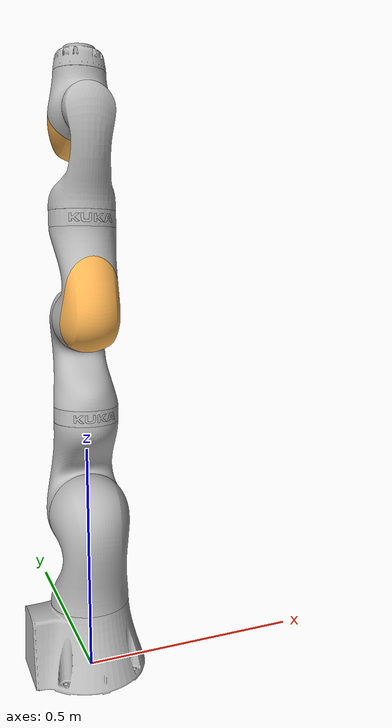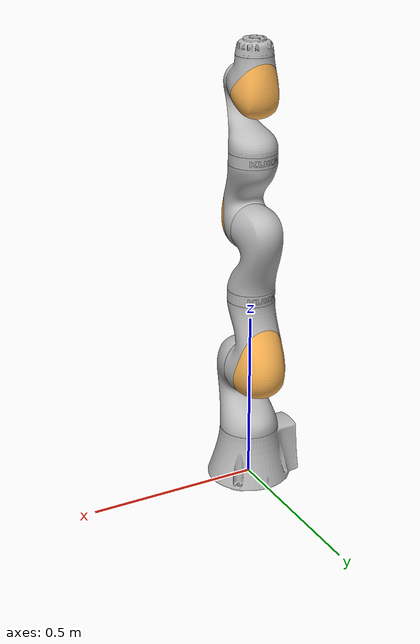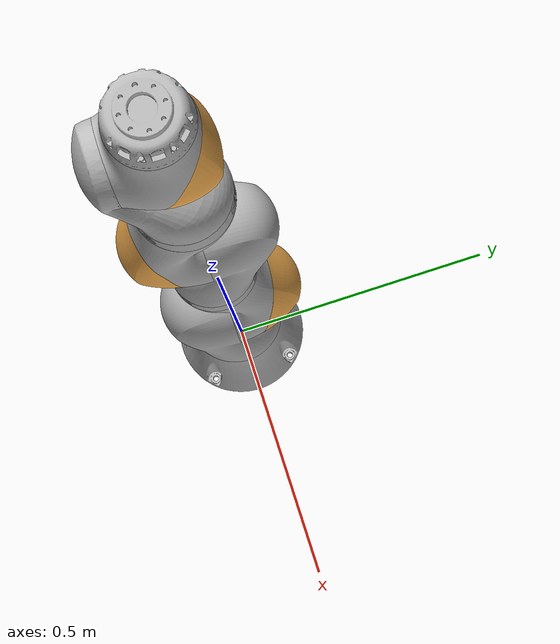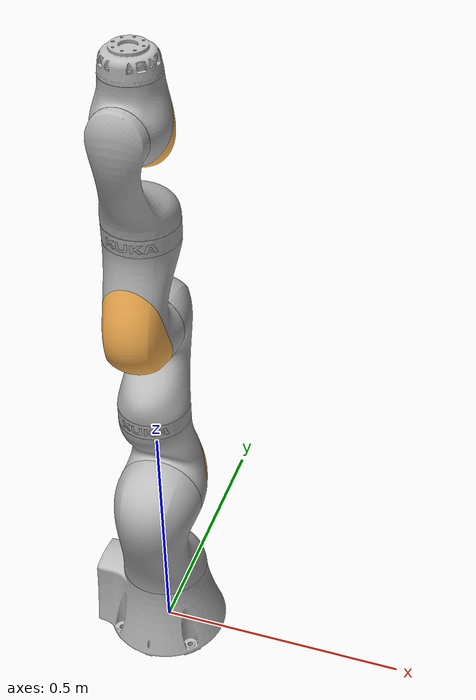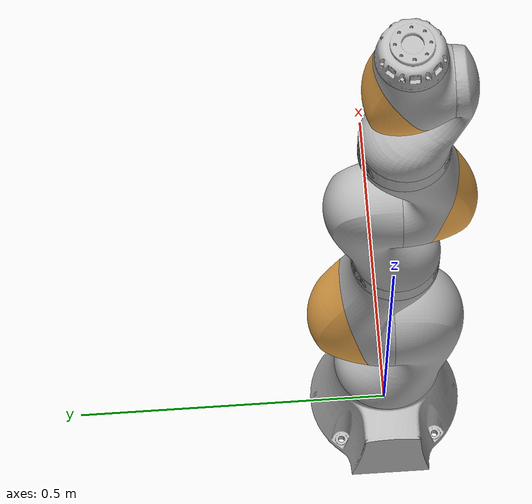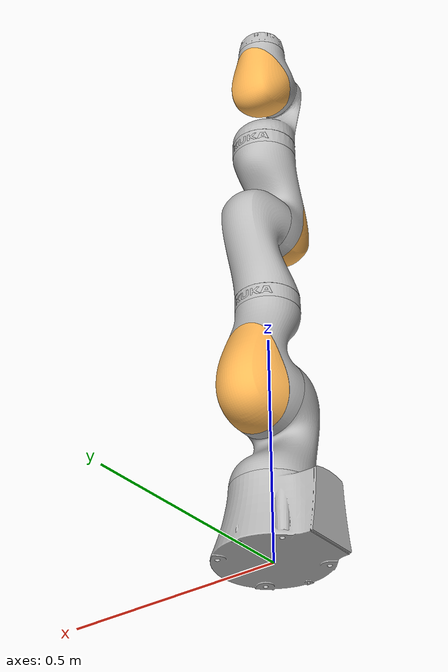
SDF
<sdf version='1.11'>
  <model name='converted_robot'>
    <joint name='world2base_fixed' type='fixed'>
      <pose relative_to='__model__'>0 0 0 0 0 0</pose>
      <parent>world</parent>
      <child>base</child>
    </joint>
    <link name='base'>
      <pose relative_to='world2base_fixed'>0 0 0 0 0 0</pose>

      <collision name='base_collision_1'>
        <pose>0 0 0.03 0 0 0</pose>
          <geometry>
            <sphere>
              <radius>0.12</radius>
            </sphere>
          </geometry>
      </collision>

      <collision name='base_collision_2'>
        <pose>-0.08 0 0.103 0 0 0</pose>
          <geometry>
            <sphere>
              <radius>0.08</radius>
            </sphere>
          </geometry>
      </collision>

      <collision name='base_collision_3'>
        <pose>-0.08 0 0.04 0 0 0</pose>
          <geometry>
            <sphere>
              <radius>0.08</radius>
            </sphere>
          </geometry>
      </collision>

      <collision name='base_collision_4'>
        <pose>0 0 0.14 0 0 0</pose>
          <geometry>
             <sphere>
              <radius>0.1</radius>
            </sphere>
          </geometry>
      </collision>

      <inertial>
        <pose>-0.10000000000000001 0 0.070000000000000007 0 0 0</pose>
        <mass>5</mass>
        <inertia>
          <ixx>0.050000000000000003</ixx>
          <ixy>0</ixy>
          <ixz>0</ixz>
          <iyy>0.059999999999999998</iyy>
          <iyz>0</iyz>
          <izz>0.029999999999999999</izz>
        </inertia>
      </inertial>
      <visual name='base_fixed_joint_lump__link_0_visual'>
        <pose>-0.01261167122700449 -3.2540969856734131e-07 0.07039070638127487 -3.1406330260149349 -1.4930811981613767 -0.00088985524124485368</pose>
        <geometry>
          <mesh>
            <scale>1 1 1</scale>
            <uri>model://../vendor/mujoco_exported/iiwa14/mesh/converted_link_0_666666ff.obj</uri>
          </mesh>
        </geometry>
      </visual>
    </link>
    <joint name='joint1' type='revolute'>
      <pose relative_to='base'>0 0 0.1575 0 0 0</pose>
      <parent>base</parent>
      <child>joint1_jointbody</child>
      <axis>
        <xyz>0 0 1</xyz>
        <limit>
          <lower>-2.96706</lower>
          <upper>2.96706</upper>
          <effort>100</effort>
          <velocity>100</velocity>
        </limit>
        <dynamics>
          <spring_reference>0</spring_reference>
          <spring_stiffness>0</spring_stiffness>
        </dynamics>
      </axis>
    </joint>
    <link name='joint1_jointbody'>

      <collision name='joint1_collision_1'>
        <pose>0 0 -0.0005 0 0 0</pose>
          <geometry>
             <sphere>
              <radius>0.08</radius>
            </sphere>
          </geometry>
      </collision>

      <collision name='joint1_collision_2'>
        <pose>0.01 -0.025 0.0425 0 0 0</pose>
        <geometry>
          <sphere>
            <radius>0.075</radius>
          </sphere>
        </geometry>
      </collision>

      <collision name='joint1_collision_3'>
        <pose>-0.01 -0.025 0.0425 0 0 0</pose>
        <geometry>
          <sphere>
            <radius>0.075</radius>
          </sphere>
        </geometry>
      </collision>

      <collision name='joint1_collision_4'>
        <pose>0.01 -0.045 0.1025 0 0 0</pose>
        <geometry>
          <sphere>
            <radius>0.07</radius>
          </sphere>
        </geometry>
      </collision>

      <collision name='joint1_collision_5'>
        <pose>-0.01 -0.045 0.1025 0 0 0</pose>
        <geometry>
          <sphere>
            <radius>0.07</radius>
          </sphere>
        </geometry>
      </collision>

      <pose relative_to='joint1'>0 0 0 0 0 0</pose>
      <inertial>
        <pose>0 -0.02999479257073424 0.119979170282937 0 0 0</pose>
        <mass>5.7610000000000001</mass>
        <inertia>
          <ixx>0.03331529834421109</ixx>
          <ixy>0</ixy>
          <ixz>0</ixz>
          <iyy>0.033014398500433959</iyy>
          <iyz>3.599375108489456e-06</iyz>
          <izz>0.012300900843777119</izz>
        </inertia>
      </inertial>
      <visual name='joint1_jointbody_fixed_joint_lump__link_1_visual'>
        <pose>-1.9467006956065569e-06 -0.03351071875139483 0.12307399450484061 -5.6995778251811152e-05 -0.21504380001445417 1.5709677059154581</pose>
        <geometry>
          <mesh>
            <scale>1 1 1</scale>
            <uri>model://../vendor/mujoco_exported/iiwa14/mesh/converted_link_1_666666ff.obj</uri>
          </mesh>
        </geometry>
      </visual>
    </link>
    <joint name='joint2' type='revolute'>
      <pose relative_to='joint1_jointbody'>0 0 0.20250000000000001 1.5707963267948959 3.7109275873535113e-33 3.1415926535897931</pose>
      <parent>joint1_jointbody</parent>
      <child>joint2_jointbody</child>
      <axis>
        <xyz>0 0 1</xyz>
        <limit>
          <lower>-2.0943999999999998</lower>
          <upper>2.0943999999999998</upper>
          <effort>100</effort>
          <velocity>100</velocity>
        </limit>
        <dynamics>
          <spring_reference>0</spring_reference>
          <spring_stiffness>0</spring_stiffness>
        </dynamics>
      </axis>
    </joint>
    <link name='joint2_jointbody'>

      <collision name='joint2_collision_1'>
        <pose>0 0 -0.01 0 0 0</pose>
        <geometry>
          <sphere>
            <radius>0.095</radius>
          </sphere>
        </geometry>
      </collision>

      <collision name='joint2_collision_2'>
        <pose>0 0 0.045 0 0 0</pose>
        <geometry>
          <sphere>
            <radius>0.09</radius>
          </sphere>
        </geometry>
      </collision>

      <collision name='joint2_collision_3'>
        <pose>-0.01 0.04 0.054 0 0 0</pose>
        <geometry>
          <sphere>
            <radius>0.07</radius>
          </sphere>
        </geometry>
      </collision>

      <collision name='joint2_collision_4'>
        <pose>-0.01 0.09 0.04 0 0 0</pose>
        <geometry>
          <sphere>
            <radius>0.065</radius>
          </sphere>
        </geometry>
      </collision>

      <collision name='joint2_collision_5'>
        <pose>-0.01 0.13 0.02 0 0 0</pose>
        <geometry>
          <sphere>
            <radius>0.065</radius>
          </sphere>
        </geometry>
      </collision>

      <collision name='joint2_collision_6'>
        <pose>0.01 0.04 0.054 0 0 0</pose>
        <geometry>
          <sphere>
            <radius>0.07</radius>
          </sphere>
        </geometry>
      </collision>

      <collision name='joint2_collision_7'>
        <pose>0.01 0.09 0.04 0 0 0</pose>
        <geometry>
          <sphere>
            <radius>0.065</radius>
          </sphere>
        </geometry>
      </collision>

      <collision name='joint2_collision_8'>
        <pose>0.01 0.13 0.02 0 0 0</pose>
        <geometry>
          <sphere>
            <radius>0.065</radius>
          </sphere>
        </geometry>
      </collision>

      <collision name='joint2_collision_9'>
        <pose>0 0.18 0 0 0 0</pose>
        <geometry>
          <sphere>
            <radius>0.075</radius>
          </sphere>
        </geometry>
      </collision>

      <pose relative_to='joint2'>0 0 0 0 0 0</pose>
      <inertial>
        <pose>0.0002999527633443552 0.058990710124389861 0.041993386868209727 0 0 0</pose>
        <mass>6.351</mass>
        <inertia>
          <ixx>0.030505245174145799</ixx>
          <ixy>-1.769721303966535e-08</ixy>
          <ixz>-1.259801606044824e-08</ixz>
          <iyy>0.011001764812234289</iyy>
          <iyz>-2.477609825228337e-06</iyz>
          <izz>0.030403481541883159</izz>
        </inertia>
      </inertial>
      <visual name='joint2_jointbody_fixed_joint_lump__link_2_orange_visual'>
        <pose>5.8332434960880928e-06 -0.0013649111339534309 0.08664810682832555 -3.1413084297767169 -1.3661334244729548 -1.5709650880838832</pose>
        <geometry>
          <mesh>
            <scale>1 1 1</scale>
            <uri>model://../vendor/mujoco_exported/iiwa14/mesh/converted_link_2_orange_ff6c0aff.obj</uri>
          </mesh>
        </geometry>
        <material>
          <diffuse>1 0.713698745 0.325342476 1</diffuse>
          <ambient>1 0.713698745 0.325342476 1</ambient>
        </material>
      </visual>
      <visual name='joint2_jointbody_fixed_joint_lump__link_2_grey_visual_1'>
        <pose>0.00043793493861049077 0.1028961667147313 0.01521023913606589 0.0016576673364870642 -1.5322290241696956 1.5691159451565311</pose>
        <geometry>
          <mesh>
            <scale>1 1 1</scale>
            <uri>model://../vendor/mujoco_exported/iiwa14/mesh/converted_link_2_grey_666666ff.obj</uri>
          </mesh>
        </geometry>
      </visual>
    </link>
    <joint name='joint3' type='revolute'>
      <pose relative_to='joint2_jointbody'>0 0.20449999999999999 0 1.5707963267948959 3.7109275873535113e-33 3.1415926535897931</pose>
      <parent>joint2_jointbody</parent>
      <child>joint3_jointbody</child>
      <axis>
        <xyz>0 0 1</xyz>
        <limit>
          <lower>-2.96706</lower>
          <upper>2.96706</upper>
          <effort>100</effort>
          <velocity>100</velocity>
        </limit>
        <dynamics>
          <spring_reference>0</spring_reference>
          <spring_stiffness>0</spring_stiffness>
        </dynamics>
      </axis>
    </joint>
    <link name='joint3_jointbody'>

      <collision name='joint3_collision_1'>
        <pose>0 0 0.0355 0 0 0</pose>
        <geometry>
          <sphere>
            <radius>0.075</radius>
          </sphere>
        </geometry>
      </collision>

      <collision name='joint3_collision_2'>
        <pose>0.01 0.023 0.0855 0 0 0</pose>
        <geometry>
          <sphere>
            <radius>0.06</radius>
          </sphere>
        </geometry>
      </collision>

      <collision name='joint3_collision_3'>
        <pose>0.01 0.048 0.1255 0 0 0</pose>
        <geometry>
          <sphere>
            <radius>0.055</radius>
          </sphere>
        </geometry>
      </collision>

      <collision name='joint3_collision_4'>
        <pose>0.01 0.056 0.1755 0 0 0</pose>
        <geometry>
          <sphere>
            <radius>0.06</radius>
          </sphere>
        </geometry>
      </collision>

      <collision name='joint3_collision_5'>
        <pose>-0.01 0.023 0.0855 0 0 0</pose>
        <geometry>
          <sphere>
            <radius>0.06</radius>
          </sphere>
        </geometry>
      </collision>

      <collision name='joint3_collision_6'>
        <pose>-0.01 0.048 0.1255 0 0 0</pose>
        <geometry>
          <sphere>
            <radius>0.055</radius>
          </sphere>
        </geometry>
      </collision>

      <collision name='joint3_collision_7'>
        <pose>-0.01 0.056 0.1755 0 0 0</pose>
        <geometry>
          <sphere>
            <radius>0.06</radius>
          </sphere>
        </geometry>
      </collision>

      <collision name='joint3_collision_8'>
        <pose>0 0.045 0.2155 0 0 0</pose>
        <geometry>
          <sphere>
            <radius>0.075</radius>
          </sphere>
        </geometry>
      </collision>

      <collision name='joint3_collision_9'>
        <pose>0 0 0.2155 0 0 0</pose>
        <geometry>
          <sphere>
            <radius>0.075</radius>
          </sphere>
        </geometry>
      </collision>

      <pose relative_to='joint3'>0 0 0 0 0 0</pose>
      <inertial>
        <pose>0 0.029991431019708661 0.12996286775207089 0 0 0</pose>
        <mass>3.5009999999999999</mass>
        <inertia>
          <ixx>0.025017795915738359</ixx>
          <ixy>0</ixy>
          <ixz>0</ixz>
          <iyy>0.023816896172807769</iyy>
          <iyz>-3.8988860325580958e-06</iyz>
          <izz>0.0076009007429305893</izz>
        </inertia>
      </inertial>
      <visual name='joint3_jointbody_fixed_joint_lump__link_3_visual'>
        <pose>1.4079955059051841e-06 0.032971200728359053 0.1363955973320741 0.0029220508029157819 0.23613841319999529 1.5832927568612389</pose>
        <geometry>
          <mesh>
            <scale>1 1 1</scale>
            <uri>model://../vendor/mujoco_exported/iiwa14/mesh/converted_link_3_666666ff.obj</uri>
          </mesh>
        </geometry>
      </visual>
      <visual name='joint3_jointbody_fixed_joint_lump__band_visual_1'>
        <pose>-3.5052711079717897e-05 -1.838585198643754e-05 0.016549965935683291 -3.0803831135190398 -1.5707963267948966 0</pose>
        <geometry>
          <mesh>
            <scale>1 1 1</scale>
            <uri>model://../vendor/mujoco_exported/iiwa14/mesh/converted_band_999999ff.obj</uri>
          </mesh>
        </geometry>
      </visual>
      <visual name='joint3_jointbody_fixed_joint_lump__kuka_visual_2'>
        <pose>1.051373642038026e-06 -2.864459744481528e-06 0.016135466494431941 1.6301255363357112 -1.5707963267948966 0</pose>
        <geometry>
          <mesh>
            <scale>1 1 1</scale>
            <uri>model://../vendor/mujoco_exported/iiwa14/mesh/converted_kuka_000000ff.obj</uri>
          </mesh>
        </geometry>
      </visual>
    </link>
    <joint name='joint4' type='revolute'>
      <pose relative_to='joint3_jointbody'>0 0 0.2155 1.5707963267948959 0 0</pose>
      <parent>joint3_jointbody</parent>
      <child>joint4_jointbody</child>
      <axis>
        <xyz>0 0 1</xyz>
        <limit>
          <lower>-2.0943999999999998</lower>
          <upper>2.0943999999999998</upper>
          <effort>100</effort>
          <velocity>100</velocity>
        </limit>
        <dynamics>
          <spring_reference>0</spring_reference>
          <spring_stiffness>0</spring_stiffness>
        </dynamics>
      </axis>
    </joint>
    <link name='joint4_jointbody'>

      <collision name='joint4_collision_1'>
        <pose>0 0.01 0.046 0 0 0</pose>
        <geometry>
          <sphere>
            <radius>0.078</radius>
          </sphere>
        </geometry>
      </collision>

      <collision name='joint4_collision_2'>
        <pose>0.01 0.06 0.052 0 0 0</pose>
        <geometry>
          <sphere>
            <radius>0.06</radius>
          </sphere>
        </geometry>
      </collision>

      <collision name='joint4_collision_3'>
        <pose>0.01 0.12 0.034 0 0 0</pose>
        <geometry>
          <sphere>
            <radius>0.065</radius>
          </sphere>
        </geometry>
      </collision>

      <collision name='joint4_collision_4'>
        <pose>-0.01 0.06 0.052 0 0 0</pose>
        <geometry>
          <sphere>
            <radius>0.06</radius>
          </sphere>
        </geometry>
      </collision>

      <collision name='joint4_collision_5'>
        <pose>-0.01 0.12 0.034 0 0 0</pose>
        <geometry>
          <sphere>
            <radius>0.065</radius>
          </sphere>
        </geometry>
      </collision>

      <collision name='joint4_collision_6'>
        <pose>0 0.184 0 0 0 0</pose>
        <geometry>
          <sphere>
            <radius>0.075</radius>
          </sphere>
        </geometry>
      </collision>

      <pose relative_to='joint4'>0 0 0 0 0 0</pose>
      <inertial>
        <pose>0 0.066980862610682673 0.033990288489003137 0 0 0</pose>
        <mass>3.5009999999999999</mass>
        <inertia>
          <ixx>0.01700564438760354</ixx>
          <ixy>0</ixy>
          <ixz>0</ixz>
          <iyy>0.0060011566698086258</iyy>
          <iyz>-2.277349328761331e-06</iyz>
          <izz>0.016404488717794909</izz>
        </inertia>
      </inertial>
      <visual name='joint4_jointbody_fixed_joint_lump__link_4_orange_visual'>
        <pose>4.8249804184235769e-06 0.0079688552714835513 0.079761534750219437 3.1414123357037496 -1.3520160965960955 -1.5708312876241148</pose>
        <geometry>
          <mesh>
            <scale>1 1 1</scale>
            <uri>model://../vendor/mujoco_exported/iiwa14/mesh/converted_link_4_orange_ff6c0aff.obj</uri>
          </mesh>
        </geometry>
        <material>
          <diffuse>1 0.713698745 0.325342476 1</diffuse>
          <ambient>1 0.713698745 0.325342476 1</ambient>
        </material>
      </visual>
      <visual name='joint4_jointbody_fixed_joint_lump__link_4_grey_visual_1'>
        <pose>-7.191555879988226e-07 0.099246338729811964 0.012969840121518901 0.0023581594407875825 -1.5072370203283645 1.5684105762133538</pose>
        <geometry>
          <mesh>
            <scale>1 1 1</scale>
            <uri>model://../vendor/mujoco_exported/iiwa14/mesh/converted_link_4_grey_666666ff.obj</uri>
          </mesh>
        </geometry>
      </visual>
    </link>
    <joint name='joint5' type='revolute'>
      <pose relative_to='joint4_jointbody'>0 0.1845 0 1.5707963267948959 3.7109275873535113e-33 3.1415926535897931</pose>
      <parent>joint4_jointbody</parent>
      <child>joint5_jointbody</child>
      <axis>
        <xyz>0 0 1</xyz>
        <limit>
          <lower>-2.96706</lower>
          <upper>2.96706</upper>
          <effort>100</effort>
          <velocity>100</velocity>
        </limit>
        <dynamics>
          <spring_reference>0</spring_reference>
          <spring_stiffness>0</spring_stiffness>
        </dynamics>
      </axis>
    </joint>
    <link name='joint5_jointbody'>

      <collision name='joint5_collision_1'>
        <pose>0 0 0.0335 0 0 0</pose>
        <geometry>
          <sphere>
            <radius>0.075</radius>
          </sphere>
        </geometry>
      </collision>

      <collision name='joint5_collision_2'>
        <pose>-0.012 0.031 0.0755 0 0 0</pose>
        <geometry>
          <sphere>
            <radius>0.05</radius>
          </sphere>
        </geometry>
      </collision>

      <collision name='joint5_collision_3'>
        <pose>0.012 0.031 0.0755 0 0 0</pose>
        <geometry>
          <sphere>
            <radius>0.05</radius>
          </sphere>
        </geometry>
      </collision>

      <collision name='joint5_collision_4'>
        <pose>-0.012 0.06 0.1155 0 0 0</pose>
        <geometry>
          <sphere>
            <radius>0.04</radius>
          </sphere>
        </geometry>
      </collision>

      <collision name='joint5_collision_5'>
        <pose>0.012 0.06 0.1155 0 0 0</pose>
        <geometry>
          <sphere>
            <radius>0.04</radius>
          </sphere>
        </geometry>
      </collision>

      <collision name='joint5_collision_6'>
        <pose>-0.01 0.065 0.1655 0 0 0</pose>
        <geometry>
          <sphere>
            <radius>0.04</radius>
          </sphere>
        </geometry>
      </collision>

      <collision name='joint5_collision_7'>
        <pose>0.01 0.065 0.1655 0 0 0</pose>
        <geometry>
          <sphere>
            <radius>0.04</radius>
          </sphere>
        </geometry>
      </collision>

      <collision name='joint5_collision_8'>
        <pose>-0.012 0.065 0.1855 0 0 0</pose>
        <geometry>
          <sphere>
            <radius>0.035</radius>
          </sphere>
        </geometry>
      </collision>

      <collision name='joint5_collision_9'>
        <pose>0.012 0.065 0.1855 0 0 0</pose>
        <geometry>
          <sphere>
            <radius>0.035</radius>
          </sphere>
        </geometry>
      </collision>

      <pose relative_to='joint5'>0 0 0 0 0 0</pose>
      <inertial>
        <pose>9.9971436732362184e-05 0.020994001713796059 0.075978291916595275 0 0 0</pose>
        <mass>3.5009999999999999</mass>
        <inertia>
          <ixx>0.01000621622422164</ixx>
          <ixy>-2.0994001713784809e-09</ixy>
          <ixz>-7.5978291916526307e-09</ixz>
          <iyy>0.0087057753601827957</iyy>
          <iyz>-1.59554413024603e-06</iyz>
          <izz>0.0044904418840331344</izz>
        </inertia>
      </inertial>
      <visual name='joint5_jointbody_fixed_joint_lump__link_5_visual'>
        <pose>0.00381194920576787 0.028707793498580748 0.093610149753383193 -0.058285529334915653 0.40618148786929659 1.5076633989229997</pose>
        <geometry>
          <mesh>
            <scale>1 1 1</scale>
            <uri>model://../vendor/mujoco_exported/iiwa14/mesh/converted_link_5_666666ff.obj</uri>
          </mesh>
        </geometry>
      </visual>
      <visual name='joint5_jointbody_fixed_joint_lump__band_visual_1'>
        <pose>-3.5052711079717897e-05 -1.838585198643754e-05 0.016549965935683291 -3.0803831135190398 -1.5707963267948966 0</pose>
        <geometry>
          <mesh>
            <scale>1 1 1</scale>
            <uri>model://../vendor/mujoco_exported/iiwa14/mesh/converted_band_999999ff.obj</uri>
          </mesh>
        </geometry>
      </visual>
      <visual name='joint5_jointbody_fixed_joint_lump__kuka_visual_2'>
        <pose>1.051373642038026e-06 -2.864459744481528e-06 0.016135466494431941 1.6301255363357112 -1.5707963267948966 0</pose>
        <geometry>
          <mesh>
            <scale>1 1 1</scale>
            <uri>model://../vendor/mujoco_exported/iiwa14/mesh/converted_kuka_000000ff.obj</uri>
          </mesh>
        </geometry>
      </visual>
    </link>
    <joint name='joint6' type='revolute'>
      <pose relative_to='joint5_jointbody'>0 0 0.2155 1.5707963267948959 0 0</pose>
      <parent>joint5_jointbody</parent>
      <child>joint6_jointbody</child>
      <axis>
        <xyz>0 0 1</xyz>
        <limit>
          <lower>-2.0943999999999998</lower>
          <upper>2.0943999999999998</upper>
          <effort>100</effort>
          <velocity>100</velocity>
        </limit>
        <dynamics>
          <spring_reference>0</spring_reference>
          <spring_stiffness>0</spring_stiffness>
        </dynamics>
      </axis>
    </joint>
    <link name='joint6_jointbody'>

      <collision name='joint6_collision_1'>
        <pose>0 0 -0.059 0 0 0</pose>
        <geometry>
          <sphere>
            <radius>0.055</radius>
          </sphere>
        </geometry>
      </collision>

      <collision name='joint6_collision_2'>
        <pose>0 -0.03 0.011 0 0 0</pose>
        <geometry>
          <sphere>
            <radius>0.065</radius>
          </sphere>
        </geometry>
      </collision>

      <collision name='joint6_collision_3'>
        <pose>0 0 0 0 0 0</pose>
        <geometry>
          <sphere>
            <radius>0.08</radius>
          </sphere>
        </geometry>
      </collision>

      <pose relative_to='joint6'>0 0 0 0 0 0</pose>
      <inertial>
        <pose>0 0.00059966685174902841 0.00039977790116601901 0 0 0</pose>
        <mass>1.8009999999999999</mass>
        <inertia>
          <ixx>0.0049000015197112716</ixx>
          <ixy>0</ixy>
          <ixz>0</ixz>
          <iyy>0.0036000011599111609</iyy>
          <iyz>-2.3986674038779227e-10</iyz>
          <izz>0.0047000013598001112</izz>
        </inertia>
      </inertial>
      <visual name='joint6_jointbody_fixed_joint_lump__link_6_orange_visual'>
        <pose>-1.173265442395859e-06 -0.032810575356971121 0.025841151571891961 3.1404471117136921 -1.0516466426619555 -1.5709595261648188</pose>
        <geometry>
          <mesh>
            <scale>1 1 1</scale>
            <uri>model://../vendor/mujoco_exported/iiwa14/mesh/converted_link_6_orange_ff6c0aff.obj</uri>
          </mesh>
        </geometry>
        <material>
          <diffuse>1 0.713698745 0.325342476 1</diffuse>
          <ambient>1 0.713698745 0.325342476 1</ambient>
        </material>
      </visual>
      <visual name='joint6_jointbody_fixed_joint_lump__link_6_grey_visual_1'>
        <pose>-4.1669810009744231e-06 0.02953027794651189 -0.021364754377460889 3.141365631955773 -0.95349883921182832 -1.570684363068793</pose>
        <geometry>
          <mesh>
            <scale>1 1 1</scale>
            <uri>model://../vendor/mujoco_exported/iiwa14/mesh/converted_link_6_grey_666666ff.obj</uri>
          </mesh>
        </geometry>
      </visual>
    </link>
    <joint name='joint7' type='revolute'>
      <pose relative_to='joint6_jointbody'>0 0.081000000000000003 0 1.5707963267948959 3.7109275873535113e-33 3.1415926535897931</pose>
      <parent>joint6_jointbody</parent>
      <child>joint7_jointbody</child>
      <axis>
        <xyz>0 0 1</xyz>
        <limit>
          <lower>-3.0543300000000002</lower>
          <upper>3.0543300000000002</upper>
          <effort>100</effort>
          <velocity>100</velocity>
        </limit>
        <dynamics>
          <spring_reference>0</spring_reference>
          <spring_stiffness>0</spring_stiffness>
        </dynamics>
      </axis>
    </joint>
    <link name='joint7_jointbody'>

      <collision name='joint7_collision_1'>
        <pose>0 0 -0.059 0 0 0</pose>
        <geometry>
          <sphere>
            <radius>0.055</radius>
          </sphere>
        </geometry>
      </collision>

      <collision name='joint7_collision_2'>
        <pose>0 -0.03 0.011 0 0 0</pose>
        <geometry>
          <sphere>
            <radius>0.065</radius>
          </sphere>
        </geometry>
      </collision>

      <collision name='joint7_collision_3'>
        <pose>0 0 0 0 0 0</pose>
        <geometry>
          <sphere>
            <radius>0.08</radius>
          </sphere>
        </geometry>
      </collision>

      <pose relative_to='joint7'>0 0 0 0 0 0</pose>
      <inertial>
        <pose>0 0 0.019983347210657788 0 0 0</pose>
        <mass>1.2010000000000001</mass>
        <inertia>
          <ixx>0.001000400666944213</ixx>
          <ixy>0</ixy>
          <ixz>0</ixz>
          <iyy>0.001000400666944213</iyy>
          <iyz>0</iyz>
          <izz>0.0010000009999999999</izz>
        </inertia>
      </inertial>
      <visual name='joint7_jointbody_fixed_joint_lump__link_7_visual'>
        <pose>-9.6610768496038946e-06 -9.1533803358094512e-07 0.01686968091357946 1.571918295470861 -1.5707963267948966 0</pose>
        <geometry>
          <mesh>
            <scale>1 1 1</scale>
            <uri>model://../vendor/mujoco_exported/iiwa14/mesh/converted_link_7_666666ff.obj</uri>
          </mesh>
        </geometry>
      </visual>
    </link>
    <frame name='joint1_offset' attached_to='joint1_jointbody'>
      <pose>0 0 0 0 0 0</pose>
    </frame>
    <frame name='link1' attached_to='joint1_offset'>
      <pose>0 0 0 0 0 0</pose>
    </frame>
    <frame name='joint2_offset' attached_to='joint2_jointbody'>
      <pose>0 0 0 0 0 0</pose>
    </frame>
    <frame name='link2' attached_to='joint2_offset'>
      <pose>0 0 0 0 0 0</pose>
    </frame>
    <frame name='joint3_offset' attached_to='joint3_jointbody'>
      <pose>0 0 0 0 0 0</pose>
    </frame>
    <frame name='link3' attached_to='joint3_offset'>
      <pose>0 0 0 0 0 0</pose>
    </frame>
    <frame name='joint4_offset' attached_to='joint4_jointbody'>
      <pose>0 0 0 0 0 0</pose>
    </frame>
    <frame name='link4' attached_to='joint4_offset'>
      <pose>0 0 0 0 0 0</pose>
    </frame>
    <frame name='joint5_offset' attached_to='joint5_jointbody'>
      <pose>0 0 0 0 0 0</pose>
    </frame>
    <frame name='link5' attached_to='joint5_offset'>
      <pose>0 0 0 0 0 0</pose>
    </frame>
    <frame name='joint6_offset' attached_to='joint6_jointbody'>
      <pose>0 0 0 0 0 0</pose>
    </frame>
    <frame name='link6' attached_to='joint6_offset'>
      <pose>0 0 0 0 0 0</pose>
    </frame>
    <frame name='joint7_offset' attached_to='joint7_jointbody'>
      <pose>0 0 0 0 0 0</pose>
    </frame>
    <frame name='link7' attached_to='joint7_offset'>
      <pose>0 0 0 0 0 0</pose>
    </frame>
  </model>
</sdf>
